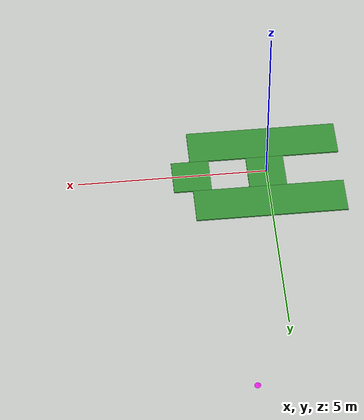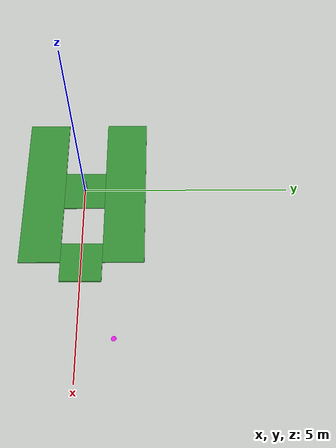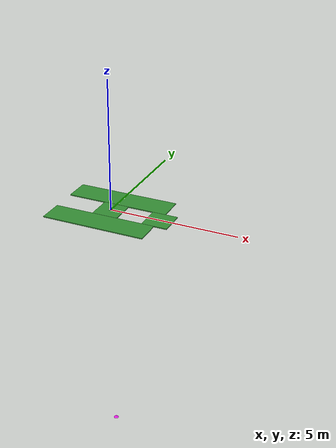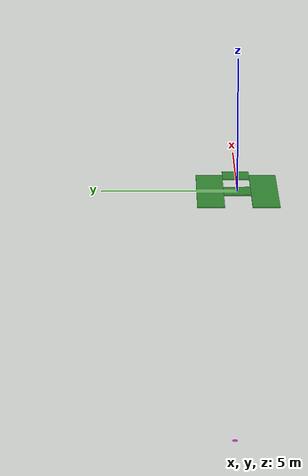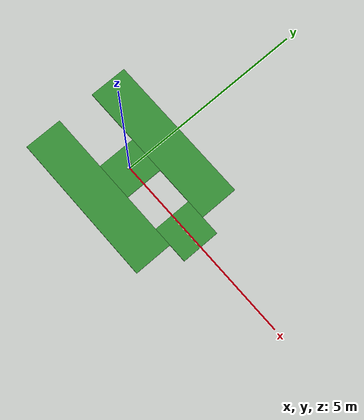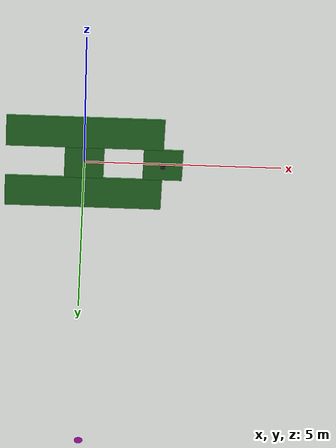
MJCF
<mujoco model="golf_world">
  <compiler angle="degree"/>
  <option timestep="0.002" gravity="0 0 -9.81" integrator="RK4" cone="elliptic"/>

  <!-- Defaults: enable 6D friction and make contacts crisp -->
  <default>
    <geom condim="6" solref="0.002 1" solimp="0.95 0.99 0.001"
          friction="0.30831 1.83703e-05 0.000817"/> <!-- 0.6 0.001 0.0048 slide, spin, roll -->
  </default>

  <asset>
    <!-- Materials -->
    <material name="green_mat"     rgba="0.2 0.55 0.2 1"/>
    <material name="green_mat_out" rgba="0.5 0.5 0.5 1"/>
    <material name="green_mat_out1" rgba="0.0 0.5 0.5 1"/>
    <material name="green_mat_out2" rgba="0.5 0.0 0.5 1"/>
    <material name="cup_mat"       rgba="0.3 0.3 0.3 1"/>
    <texture  name ="checks" type="2d" builtin="checker" width="512" height="512"
              rgb1="1 1 1" rgb2="0 0 0" mark="cross" markrgb="1 0 0"/>
    <material name="ball_mat"  texture="checks" rgba="1 1 1 1"/>
    <material name="club_mat"  rgba="0.9 0.9 0.9 1"/>
    <material name="disc_mat"  rgba="0.9 0.1 0.9 1"/>

    <!-- 27 convex wedges (OBJ). Scale x10 vs earlier (0.01) -->
    <mesh name="cup_w00" file="assets/golf_hole_obj/golf_hole_obj_collision_0.obj"  scale="0.01 0.01 0.01"/>
    <mesh name="cup_w01" file="assets/golf_hole_obj/golf_hole_obj_collision_1.obj"  scale="0.01 0.01 0.01"/>
    <mesh name="cup_w02" file="assets/golf_hole_obj/golf_hole_obj_collision_2.obj"  scale="0.01 0.01 0.01"/>
    <mesh name="cup_w03" file="assets/golf_hole_obj/golf_hole_obj_collision_3.obj"  scale="0.01 0.01 0.01"/>
    <mesh name="cup_w04" file="assets/golf_hole_obj/golf_hole_obj_collision_4.obj"  scale="0.01 0.01 0.01"/>
    <mesh name="cup_w05" file="assets/golf_hole_obj/golf_hole_obj_collision_5.obj"  scale="0.01 0.01 0.01"/>
    <mesh name="cup_w06" file="assets/golf_hole_obj/golf_hole_obj_collision_6.obj"  scale="0.01 0.01 0.01"/>
    <mesh name="cup_w07" file="assets/golf_hole_obj/golf_hole_obj_collision_7.obj"  scale="0.01 0.01 0.01"/>
    <mesh name="cup_w08" file="assets/golf_hole_obj/golf_hole_obj_collision_8.obj"  scale="0.01 0.01 0.01"/>
    <mesh name="cup_w09" file="assets/golf_hole_obj/golf_hole_obj_collision_9.obj"  scale="0.01 0.01 0.01"/>
    <mesh name="cup_w10" file="assets/golf_hole_obj/golf_hole_obj_collision_10.obj" scale="0.01 0.01 0.01"/>
    <mesh name="cup_w11" file="assets/golf_hole_obj/golf_hole_obj_collision_11.obj" scale="0.01 0.01 0.01"/>
    <mesh name="cup_w12" file="assets/golf_hole_obj/golf_hole_obj_collision_12.obj" scale="0.01 0.01 0.01"/>
    <mesh name="cup_w13" file="assets/golf_hole_obj/golf_hole_obj_collision_13.obj" scale="0.01 0.01 0.01"/>
    <mesh name="cup_w14" file="assets/golf_hole_obj/golf_hole_obj_collision_14.obj" scale="0.01 0.01 0.01"/>
    <mesh name="cup_w15" file="assets/golf_hole_obj/golf_hole_obj_collision_15.obj" scale="0.01 0.01 0.01"/>
    <mesh name="cup_w16" file="assets/golf_hole_obj/golf_hole_obj_collision_16.obj" scale="0.01 0.01 0.01"/>
    <mesh name="cup_w17" file="assets/golf_hole_obj/golf_hole_obj_collision_17.obj" scale="0.01 0.01 0.01"/>
    <mesh name="cup_w18" file="assets/golf_hole_obj/golf_hole_obj_collision_18.obj" scale="0.01 0.01 0.01"/>
    <mesh name="cup_w19" file="assets/golf_hole_obj/golf_hole_obj_collision_19.obj" scale="0.01 0.01 0.01"/>
    <mesh name="cup_w20" file="assets/golf_hole_obj/golf_hole_obj_collision_20.obj" scale="0.01 0.01 0.01"/>
    <mesh name="cup_w21" file="assets/golf_hole_obj/golf_hole_obj_collision_21.obj" scale="0.01 0.01 0.01"/>
    <mesh name="cup_w22" file="assets/golf_hole_obj/golf_hole_obj_collision_22.obj" scale="0.01 0.01 0.01"/>
    <mesh name="cup_w23" file="assets/golf_hole_obj/golf_hole_obj_collision_23.obj" scale="0.01 0.01 0.01"/>
    <mesh name="cup_w24" file="assets/golf_hole_obj/golf_hole_obj_collision_24.obj" scale="0.01 0.01 0.01"/>
    <mesh name="cup_w25" file="assets/golf_hole_obj/golf_hole_obj_collision_25.obj" scale="0.01 0.01 0.01"/>
    <mesh name="cup_w26" file="assets/golf_hole_obj/golf_hole_obj_collision_26.obj" scale="0.01 0.01 0.01"/>

    <mesh name="disc_obs" file="assets/disc_obstacle.stl" scale="0.001 0.001 0.001"/>
  </asset>

  <!-- Contacts -->
  <contact>
    <!-- Ball–club impact: set restitution ~0.62 via damp_ratio ≈ 0.1504 -->
    <pair geom1="ball_geom" geom2="club_head"
          solref="0.01850 0.29919"
          solimp="0.78377 1.11639 0.00108"/>
  </contact>

  <worldbody>
    <!-- ==== GROUND: 6x4 m area, 0.04 m thick, with a 0.106 m opening at (2, 0) ==== -->
    <!-- Top slab (y in [ +0.053, +2 ]) -->
    <light name="sun_top"
          pos="2 0 3"
          dir="0 0 -1"
          directional="true"
          diffuse="1 1 1"
          specular="0.2 0.2 0.2"
          castshadow="true"/>

    <geom name="green_plus_y" type="box"
          pos="0 0 -0.02" size="0.5 0.5 0.02"
          material="green_mat"/>

    <!-- Bottom slab (y in [ -2, -0.053 ]) -->
    <geom name="green_neg_y" type="box"
          pos="2 0 -0.02" size="0.5 0.5 0.02"
          material="green_mat"/>

    <!-- Left slab (x in [ -3, 1.947 ]) material="green_mat" -->
    <geom name="green_plus_x" type="box"
          pos="0 1 -0.02" size="2 0.5 0.02"
          material="green_mat"/>

    <!-- Right slab (x in [ 2.053, 3 ]) -->
    <geom name="green_neg_x" type="box"
          pos="0 -1 -0.02" size="2 0.5 0.02"
          material="green_mat"/>

    <!-- ==== CUP (27 convex OBJ wedges; no bottom) -0.110665 ==== -->
    <body name="cup" pos="2 0 -0.110665">
      <!-- Give the first wedge explicit friction; others inherit defaults -->
      <geom type="mesh" mesh="cup_w00" material="cup_mat" contype="1" conaffinity="1"/>
      <geom type="mesh" mesh="cup_w01" material="cup_mat" contype="1" conaffinity="1"/>
      <geom type="mesh" mesh="cup_w02" material="cup_mat" contype="1" conaffinity="1"/>
      <geom type="mesh" mesh="cup_w03" material="cup_mat" contype="1" conaffinity="1"/>
      <geom type="mesh" mesh="cup_w04" material="cup_mat" contype="1" conaffinity="1"/>
      <geom type="mesh" mesh="cup_w05" material="cup_mat" contype="1" conaffinity="1"/>
      <geom type="mesh" mesh="cup_w06" material="cup_mat" contype="1" conaffinity="1"/>
      <geom type="mesh" mesh="cup_w07" material="cup_mat" contype="1" conaffinity="1"/>
      <geom type="mesh" mesh="cup_w08" material="cup_mat" contype="1" conaffinity="1"/>
      <geom type="mesh" mesh="cup_w09" material="cup_mat" contype="1" conaffinity="1"/>
      <geom type="mesh" mesh="cup_w10" material="cup_mat" contype="1" conaffinity="1"/>
      <geom type="mesh" mesh="cup_w11" material="cup_mat" contype="1" conaffinity="1"/>
      <geom type="mesh" mesh="cup_w12" material="cup_mat" contype="1" conaffinity="1"/>
      <geom type="mesh" mesh="cup_w13" material="cup_mat" contype="1" conaffinity="1"/>
      <geom type="mesh" mesh="cup_w14" material="cup_mat" contype="1" conaffinity="1"/>
      <geom type="mesh" mesh="cup_w15" material="cup_mat" contype="1" conaffinity="1"/>
      <geom type="mesh" mesh="cup_w16" material="cup_mat" contype="1" conaffinity="1"/>
      <geom type="mesh" mesh="cup_w17" material="cup_mat" contype="1" conaffinity="1"/>
      <geom type="mesh" mesh="cup_w18" material="cup_mat" contype="1" conaffinity="1"/>
      <geom type="mesh" mesh="cup_w19" material="cup_mat" contype="1" conaffinity="1"/>
      <geom type="mesh" mesh="cup_w20" material="cup_mat" contype="1" conaffinity="1"/>
      <geom type="mesh" mesh="cup_w21" material="cup_mat" contype="1" conaffinity="1"/>
      <geom type="mesh" mesh="cup_w22" material="cup_mat" contype="1" conaffinity="1"/>
      <geom type="mesh" mesh="cup_w23" material="cup_mat" contype="1" conaffinity="1"/>
      <geom type="mesh" mesh="cup_w24" material="cup_mat" contype="1" conaffinity="1"/>
      <geom type="mesh" mesh="cup_w25" material="cup_mat" contype="1" conaffinity="1"/>
      <geom type="mesh" mesh="cup_w26" material="cup_mat" contype="1" conaffinity="1"/>

      <!-- Keep the site for logic/debug -->
      <site name="hole_center" pos="0 0 0" size="0.055" rgba="0 0 0 0.2" type="sphere"/>
    </body>

    <body name="disc0" pos="0 0 -10">
      <geom type="mesh" mesh="disc_obs" size="0.1" material="disc_mat" contype="1" conaffinity="1"/>
    </body>

    <body name="disc1" pos="0 0 -10">
      <geom type="mesh" mesh="disc_obs" size="0.1" material="disc_mat" contype="1" conaffinity="1"/>
    </body>

    <body name="disc2" pos="0 0 -10">
      <geom type="mesh" mesh="disc_obs" size="0.1" material="disc_mat" contype="1" conaffinity="1"/>
    </body>

    <body name="disc3" pos="0 0 -10">
      <geom type="mesh" mesh="disc_obs" size="0.1" material="disc_mat" contype="1" conaffinity="1"/>
    </body>

    <body name="disc4" pos="0 0 -10">
      <geom type="mesh" mesh="disc_obs" size="0.1" material="disc_mat" contype="1" conaffinity="1"/>
    </body>

    <!-- ==== BALL ==== -->
    <camera name="overview" pos="2.0 -3.0 1.5" quat="0.7 0.0 0.7 0.0" fovy="45"/>
    <body name="ball" pos="0 0 0.021355">
      <freejoint name="ball_free"/>
      <geom name="ball_geom" type="sphere" size="0.02135"
            rgba="0.6 0.2 0.6 1" mass="0.04593" material="ball_mat"
            condim="6"/>
    </body>

    <!-- ==== CLUB ==== -->
    <body name="club_mount" pos="0 0 0">
      <joint name="mount_free" type="free" damping="20"/>
      <geom name="mount_inert" type="sphere" size="0.10" mass="5.0"
            rgba="0 0 0 0" contype="0" conaffinity="0"/>

      <body name="club_offset" pos="-0.03 0.05 0.37865">
        <body name="club_link" pos="0 0 0">
          <joint name="club_hinge" type="hinge" axis="0 1 0" limited="true" range="-60 60" damping="0.1"/>
          <geom name="club_shaft" type="capsule" fromto="0 0 0  0 0 -0.36" size="0.01" mass="1.0" material="club_mat"/>
          <geom name="club_head"  type="box"    pos="0.0 -0.05 -0.36" size="0.02 0.05 0.03" mass="0.5" material="club_mat"/>
        </body>
      </body>
    </body>
  </worldbody>

  <!-- ==== ACTUATOR ==== -->
  <actuator>
    <velocity name="club_motor" joint="club_hinge"
              kv="20" ctrlrange="-20 20" forcerange="-40 40"/>
  </actuator>
</mujoco>
